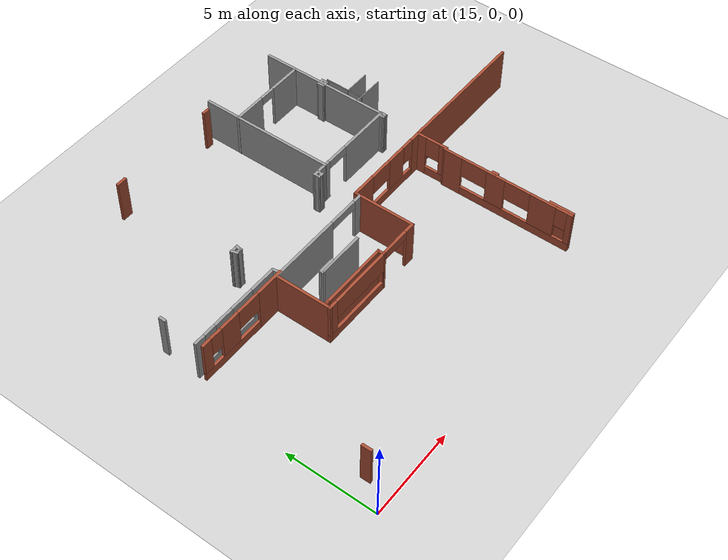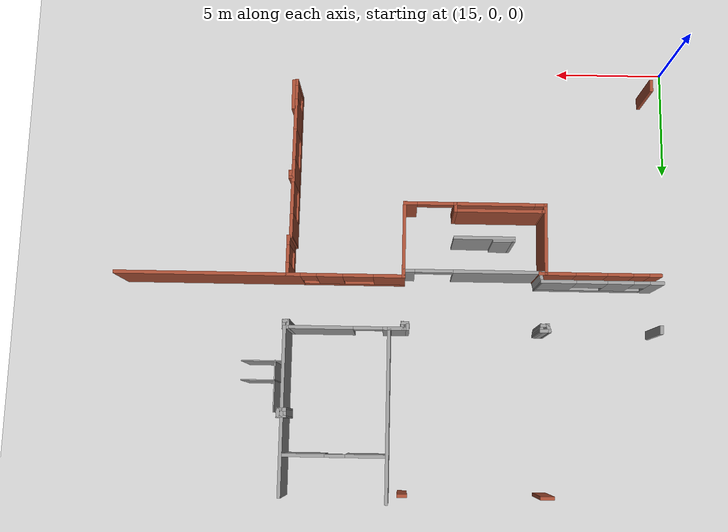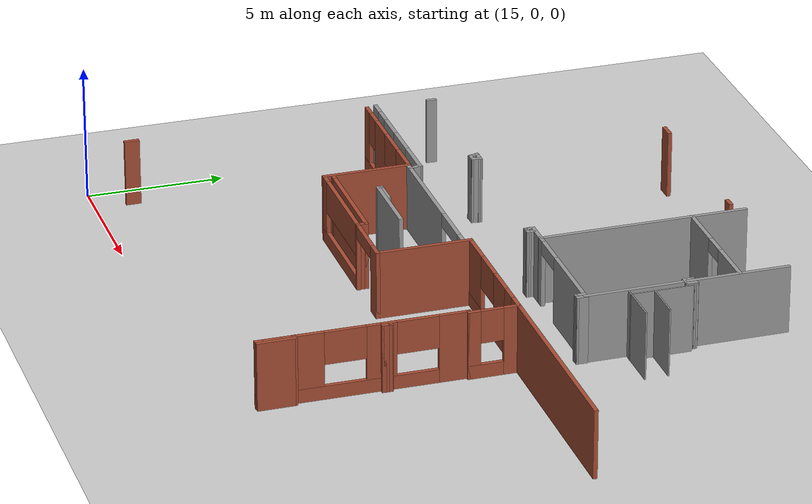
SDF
<sdf version="1.6">
 <world name="default">
  <model name="ground_plane">
   <static>1</static>
   <link name="link">
    <collision name="collision">
     <geometry><plane><normal>0 0 1</normal><size>100 100</size></plane></geometry>
     <surface><friction><ode><mu>100</mu><mu2>50</mu2></ode></friction></surface>
    </collision>
    <visual name="visual">
     <cast_shadows>0</cast_shadows>
     <geometry><plane><normal>0 0 1</normal><size>100 100</size></plane></geometry>
     <material>
      <script><uri>file://media/materials/scripts/gazebo.material</uri><name>Gazebo/Grey</name></script>
     </material>
    </visual>
   </link>
  </model>
  <model name="CVSSP">
   <pose>23.8714 24.094 0 0 -0 0</pose>
   <link name="Wall_116">
    <collision name="Wall_116_Collision">
     <geometry><box><size>7.43734 0.15 2.5</size></box></geometry>
     <pose>0 0 1.25 0 -0 0</pose>
    </collision>
    <visual name="Wall_116_Visual">
     <pose>0 0 1.25 0 -0 0</pose>
     <geometry><box><size>7.43734 0.15 2.5</size></box></geometry>
     <material>
      <script><uri>file://media/materials/scripts/gazebo.material</uri><name>Gazebo/Grey</name></script>
      <ambient>1 1 1 1</ambient>
     </material>
    </visual>
    <pose>8.67152 -7.59872 0 0 -0 1.57447</pose>
   </link>
   <link name="Wall_176">
    <pose>9.90447 -13.5773 0 0 -0 3.14159</pose>
    <visual name="Wall_176_Visual_0">
     <pose>-2.33334 0 1.25 0 -0 0</pose>
     <geometry><box><size>8.33331 0.15 2.5</size></box></geometry>
     <material>
      <script><uri>file://media/materials/scripts/gazebo.material</uri><name>Gazebo/Bricks</name></script>
      <ambient>1 1 1 1</ambient>
     </material>
    </visual>
    <collision name="Wall_176_Collision_0">
     <geometry><box><size>8.33331 0.15 2.5</size></box></geometry>
     <pose>-2.33334 0 1.25 0 -0 0</pose>
    </collision>
    <visual name="Wall_176_Visual_1">
     <pose>4.16666 0 0.25 0 -0 0</pose>
     <geometry><box><size>4.66669 0.15 0.5</size></box></geometry>
     <material>
      <script><uri>file://media/materials/scripts/gazebo.material</uri><name>Gazebo/Bricks</name></script>
      <ambient>1 1 1 1</ambient>
     </material>
    </visual>
    <collision name="Wall_176_Collision_1">
     <geometry><box><size>4.66669 0.15 0.5</size></box></geometry>
     <pose>4.16666 0 0.25 0 -0 0</pose>
    </collision>
    <visual name="Wall_176_Visual_2">
     <pose>3.13486 0 1.5 0 -0 0</pose>
     <geometry><box><size>1.16219 0.15 2</size></box></geometry>
     <material>
      <script><uri>file://media/materials/scripts/gazebo.material</uri><name>Gazebo/Bricks</name></script>
      <ambient>1 1 1 1</ambient>
     </material>
    </visual>
    <collision name="Wall_176_Collision_2">
     <geometry><box><size>1.16219 0.15 2</size></box></geometry>
     <pose>3.13486 0 1.5 0 -0 0</pose>
    </collision>
    <visual name="Wall_176_Visual_3">
     <pose>5.7864 0 1.5 0 -0 0</pose>
     <geometry><box><size>1.42721 0.15 2</size></box></geometry>
     <material>
      <script><uri>file://media/materials/scripts/gazebo.material</uri><name>Gazebo/Bricks</name></script>
      <ambient>1 1 1 1</ambient>
     </material>
    </visual>
    <collision name="Wall_176_Collision_3">
     <geometry><box><size>1.42721 0.15 2</size></box></geometry>
     <pose>5.7864 0 1.5 0 -0 0</pose>
    </collision>
    <visual name="Wall_176_Visual_4">
     <pose>2.19354 0 1.9 0 -0 0</pose>
     <geometry><box><size>0.720452 0.15 1.2</size></box></geometry>
     <material>
      <script><uri>file://media/materials/scripts/gazebo.material</uri><name>Gazebo/Bricks</name></script>
      <ambient>1 1 1 1</ambient>
     </material>
    </visual>
    <collision name="Wall_176_Collision_4">
     <geometry><box><size>0.720452 0.15 1.2</size></box></geometry>
     <pose>2.19354 0 1.9 0 -0 0</pose>
    </collision>
    <visual name="Wall_176_Visual_5">
     <pose>4.39437 0 1.9 0 -0 0</pose>
     <geometry><box><size>1.35684 0.15 1.2</size></box></geometry>
     <material>
      <script><uri>file://media/materials/scripts/gazebo.material</uri><name>Gazebo/Bricks</name></script>
      <ambient>1 1 1 1</ambient>
     </material>
    </visual>
    <collision name="Wall_176_Collision_5">
     <geometry><box><size>1.35684 0.15 1.2</size></box></geometry>
     <pose>4.39437 0 1.9 0 -0 0</pose>
    </collision>
   </link>
   <link name="Wall_179">
    <pose>8.65751 -14.4573 0 0 0 -1.5708</pose>
    <visual name="Wall_179_Visual_0">
     <pose>-0.628809 0 1.25 0 -0 0</pose>
     <geometry><box><size>0.582411 0.15 2.5</size></box></geometry>
     <material>
      <script><uri>file://media/materials/scripts/gazebo.material</uri><name>Gazebo/Bricks</name></script>
      <ambient>1 1 1 1</ambient>
     </material>
    </visual>
    <collision name="Wall_179_Collision_0">
     <geometry><box><size>0.582411 0.15 2.5</size></box></geometry>
     <pose>-0.628809 0 1.25 0 -0 0</pose>
    </collision>
    <visual name="Wall_179_Visual_1">
     <pose>0.291205 0 0.25 0 -0 0</pose>
     <geometry><box><size>1.25762 0.15 0.5</size></box></geometry>
     <material>
      <script><uri>file://media/materials/scripts/gazebo.material</uri><name>Gazebo/Bricks</name></script>
      <ambient>1 1 1 1</ambient>
     </material>
    </visual>
    <collision name="Wall_179_Collision_1">
     <geometry><box><size>1.25762 0.15 0.5</size></box></geometry>
     <pose>0.291205 0 0.25 0 -0 0</pose>
    </collision>
    <visual name="Wall_179_Visual_2">
     <pose>0.691205 0 1.5 0 -0 0</pose>
     <geometry><box><size>0.457619 0.15 2</size></box></geometry>
     <material>
      <script><uri>file://media/materials/scripts/gazebo.material</uri><name>Gazebo/Bricks</name></script>
      <ambient>1 1 1 1</ambient>
     </material>
    </visual>
    <collision name="Wall_179_Collision_2">
     <geometry><box><size>0.457619 0.15 2</size></box></geometry>
     <pose>0.691205 0 1.5 0 -0 0</pose>
    </collision>
    <visual name="Wall_179_Visual_3">
     <pose>0.062396 0 1.9 0 -0 0</pose>
     <geometry><box><size>0.8 0.15 1.2</size></box></geometry>
     <material>
      <script><uri>file://media/materials/scripts/gazebo.material</uri><name>Gazebo/Bricks</name></script>
      <ambient>1 1 1 1</ambient>
     </material>
    </visual>
    <collision name="Wall_179_Collision_3">
     <geometry><box><size>0.8 0.15 1.2</size></box></geometry>
     <pose>0.062396 0 1.9 0 -0 0</pose>
    </collision>
   </link>
   <link name="Wall_181">
    <collision name="Wall_181_Collision">
     <geometry><box><size>0.25 0.15 2.5</size></box></geometry>
     <pose>0 0 1.25 0 -0 0</pose>
    </collision>
    <visual name="Wall_181_Visual">
     <pose>0 0 1.25 0 -0 0</pose>
     <geometry><box><size>0.25 0.15 2.5</size></box></geometry>
     <material>
      <script><uri>file://media/materials/scripts/gazebo.material</uri><name>Gazebo/Bricks</name></script>
      <ambient>1 1 1 1</ambient>
     </material>
    </visual>
    <pose>8.60751 -15.3023 0 0 -0 3.14159</pose>
   </link>
   <link name="Wall_182">
    <pose>8.54751 -18.9623 0 0 0 -1.57353</pose>
    <visual name="Wall_182_Visual_0">
     <pose>-3.1752 0 1.25 0 -0 0</pose>
     <geometry><box><size>1.11963 0.15 2.5</size></box></geometry>
     <material>
      <script><uri>file://media/materials/scripts/gazebo.material</uri><name>Gazebo/Bricks</name></script>
      <ambient>1 1 1 1</ambient>
     </material>
    </visual>
    <collision name="Wall_182_Collision_0">
     <geometry><box><size>1.11963 0.15 2.5</size></box></geometry>
     <pose>-3.1752 0 1.25 0 -0 0</pose>
    </collision>
    <visual name="Wall_182_Visual_1">
     <pose>0.559815 0 0.25 0 -0 0</pose>
     <geometry><box><size>6.3504 0.15 0.5</size></box></geometry>
     <material>
      <script><uri>file://media/materials/scripts/gazebo.material</uri><name>Gazebo/Bricks</name></script>
      <ambient>1 1 1 1</ambient>
     </material>
    </visual>
    <collision name="Wall_182_Collision_1">
     <geometry><box><size>6.3504 0.15 0.5</size></box></geometry>
     <pose>0.559815 0 0.25 0 -0 0</pose>
    </collision>
    <visual name="Wall_182_Visual_2">
     <pose>-0.626161 0 1.5 0 -0 0</pose>
     <geometry><box><size>1.05351 0.15 2</size></box></geometry>
     <material>
      <script><uri>file://media/materials/scripts/gazebo.material</uri><name>Gazebo/Bricks</name></script>
      <ambient>1 1 1 1</ambient>
     </material>
    </visual>
    <collision name="Wall_182_Collision_2">
     <geometry><box><size>1.05351 0.15 2</size></box></geometry>
     <pose>-0.626161 0 1.5 0 -0 0</pose>
    </collision>
    <visual name="Wall_182_Visual_3">
     <pose>2.08039 0 1.5 0 -0 0</pose>
     <geometry><box><size>1.44149 0.15 2</size></box></geometry>
     <material>
      <script><uri>file://media/materials/scripts/gazebo.material</uri><name>Gazebo/Bricks</name></script>
      <ambient>1 1 1 1</ambient>
     </material>
    </visual>
    <collision name="Wall_182_Collision_3">
     <geometry><box><size>1.44149 0.15 2</size></box></geometry>
     <pose>2.08039 0 1.5 0 -0 0</pose>
    </collision>
    <visual name="Wall_182_Visual_4">
     <pose>3.58898 0 1.5 0 -0 0</pose>
     <geometry><box><size>0.292074 0.15 2</size></box></geometry>
     <material>
      <script><uri>file://media/materials/scripts/gazebo.material</uri><name>Gazebo/Bricks</name></script>
      <ambient>1 1 1 1</ambient>
     </material>
    </visual>
    <collision name="Wall_182_Collision_4">
     <geometry><box><size>0.292074 0.15 2</size></box></geometry>
     <pose>3.58898 0 1.5 0 -0 0</pose>
    </collision>
    <visual name="Wall_182_Visual_5">
     <pose>-1.88415 0 1.9 0 -0 0</pose>
     <geometry><box><size>1.46246 0.15 1.2</size></box></geometry>
     <material>
      <script><uri>file://media/materials/scripts/gazebo.material</uri><name>Gazebo/Bricks</name></script>
      <ambient>1 1 1 1</ambient>
     </material>
    </visual>
    <collision name="Wall_182_Collision_5">
     <geometry><box><size>1.46246 0.15 1.2</size></box></geometry>
     <pose>-1.88415 0 1.9 0 -0 0</pose>
    </collision>
    <visual name="Wall_182_Visual_6">
     <pose>0.63012 0 1.9 0 -0 0</pose>
     <geometry><box><size>1.45905 0.15 1.2</size></box></geometry>
     <material>
      <script><uri>file://media/materials/scripts/gazebo.material</uri><name>Gazebo/Bricks</name></script>
      <ambient>1 1 1 1</ambient>
     </material>
    </visual>
    <collision name="Wall_182_Collision_6">
     <geometry><box><size>1.45905 0.15 1.2</size></box></geometry>
     <pose>0.63012 0 1.9 0 -0 0</pose>
    </collision>
    <visual name="Wall_182_Visual_7">
     <pose>3.12204 0 1.9 0 -0 0</pose>
     <geometry><box><size>0.641802 0.15 1.2</size></box></geometry>
     <material>
      <script><uri>file://media/materials/scripts/gazebo.material</uri><name>Gazebo/Bricks</name></script>
      <ambient>1 1 1 1</ambient>
     </material>
    </visual>
    <collision name="Wall_182_Collision_7">
     <geometry><box><size>0.641802 0.15 1.2</size></box></geometry>
     <pose>3.12204 0 1.9 0 -0 0</pose>
    </collision>
   </link>
   <link name="Wall_191">
    <collision name="Wall_191_Collision">
     <geometry><box><size>0.25 0.15 2.5</size></box></geometry>
     <pose>0 0 1.25 0 -0 0</pose>
    </collision>
    <visual name="Wall_191_Visual">
     <pose>0 0 1.25 0 -0 0</pose>
     <geometry><box><size>0.25 0.15 2.5</size></box></geometry>
     <material>
      <script><uri>file://media/materials/scripts/gazebo.material</uri><name>Gazebo/Bricks</name></script>
      <ambient>1 1 1 1</ambient>
     </material>
    </visual>
    <pose>8.62063 -21.3528 0 0 -0 0</pose>
   </link>
   <link name="Wall_192">
    <collision name="Wall_192_Collision">
     <geometry><box><size>1.40351 0.15 2.5</size></box></geometry>
     <pose>0 0 1.25 0 -0 0</pose>
    </collision>
    <visual name="Wall_192_Visual">
     <pose>0 0 1.25 0 -0 0</pose>
     <geometry><box><size>1.40351 0.15 2.5</size></box></geometry>
     <material>
      <script><uri>file://media/materials/scripts/gazebo.material</uri><name>Gazebo/Bricks</name></script>
      <ambient>1 1 1 1</ambient>
     </material>
    </visual>
    <pose>8.67238 -21.9795 0 0 0 -1.568</pose>
   </link>
   <link name="Wall_505">
    <collision name="Wall_505_Collision">
     <geometry><box><size>3.5 0.15 2.5</size></box></geometry>
     <pose>0 0 1.25 0 -0 0</pose>
    </collision>
    <visual name="Wall_505_Visual">
     <pose>0 0 1.25 0 -0 0</pose>
     <geometry><box><size>3.5 0.15 2.5</size></box></geometry>
     <material>
      <script><uri>file://media/materials/scripts/gazebo.material</uri><name>Gazebo/Bricks</name></script>
      <ambient>1 1 1 1</ambient>
     </material>
    </visual>
    <pose>3.47947 -15.2523 0 0 0 -1.5708</pose>
   </link>
   <link name="Wall_506">
    <pose>0.304469 -16.9273 0 0 -0 3.14159</pose>
    <visual name="Wall_506_Visual_0">
     <pose>-2.93094 0 1.25 0 -0 0</pose>
     <geometry><box><size>0.638116 0.15 2.5</size></box></geometry>
     <material>
      <script><uri>file://media/materials/scripts/gazebo.material</uri><name>Gazebo/Bricks</name></script>
      <ambient>1 1 1 1</ambient>
     </material>
    </visual>
    <collision name="Wall_506_Collision_0">
     <geometry><box><size>0.638116 0.15 2.5</size></box></geometry>
     <pose>-2.93094 0 1.25 0 -0 0</pose>
    </collision>
    <visual name="Wall_506_Visual_1">
     <pose>-0.912696 0 1.25 0 -0 0</pose>
     <geometry><box><size>0.137507 0.15 2.5</size></box></geometry>
     <material>
      <script><uri>file://media/materials/scripts/gazebo.material</uri><name>Gazebo/Bricks</name></script>
      <ambient>1 1 1 1</ambient>
     </material>
    </visual>
    <collision name="Wall_506_Collision_1">
     <geometry><box><size>0.137507 0.15 2.5</size></box></geometry>
     <pose>-0.912696 0 1.25 0 -0 0</pose>
    </collision>
    <visual name="Wall_506_Visual_2">
     <pose>1.20303 0 0.25 0 -0 0</pose>
     <geometry><box><size>4.09394 0.15 0.5</size></box></geometry>
     <material>
      <script><uri>file://media/materials/scripts/gazebo.material</uri><name>Gazebo/Bricks</name></script>
      <ambient>1 1 1 1</ambient>
     </material>
    </visual>
    <collision name="Wall_506_Collision_2">
     <geometry><box><size>4.09394 0.15 0.5</size></box></geometry>
     <pose>1.20303 0 0.25 0 -0 0</pose>
    </collision>
    <visual name="Wall_506_Visual_3">
     <pose>2.97461 0 1.5 0 -0 0</pose>
     <geometry><box><size>0.550785 0.15 2</size></box></geometry>
     <material>
      <script><uri>file://media/materials/scripts/gazebo.material</uri><name>Gazebo/Bricks</name></script>
      <ambient>1 1 1 1</ambient>
     </material>
    </visual>
    <collision name="Wall_506_Collision_3">
     <geometry><box><size>0.550785 0.15 2</size></box></geometry>
     <pose>2.97461 0 1.5 0 -0 0</pose>
    </collision>
    <visual name="Wall_506_Visual_4">
     <pose>0.927636 0 1.9 0 -0 0</pose>
     <geometry><box><size>3.54316 0.15 1.2</size></box></geometry>
     <material>
      <script><uri>file://media/materials/scripts/gazebo.material</uri><name>Gazebo/Bricks</name></script>
      <ambient>1 1 1 1</ambient>
     </material>
    </visual>
    <collision name="Wall_506_Collision_4">
     <geometry><box><size>3.54316 0.15 1.2</size></box></geometry>
     <pose>0.927636 0 1.9 0 -0 0</pose>
    </collision>
    <visual name="Wall_506_Visual_5">
     <pose>-1.79667 0 2.25 0 -0 0</pose>
     <geometry><box><size>1.63044 0.15 0.5</size></box></geometry>
     <material>
      <script><uri>file://media/materials/scripts/gazebo.material</uri><name>Gazebo/Bricks</name></script>
      <ambient>1 1 1 1</ambient>
     </material>
    </visual>
    <collision name="Wall_506_Collision_5">
     <geometry><box><size>1.63044 0.15 0.5</size></box></geometry>
     <pose>-1.79667 0 2.25 0 -0 0</pose>
    </collision>
   </link>
   <link name="Wall_507">
    <collision name="Wall_507_Collision">
     <geometry><box><size>3.25 0.15 2.5</size></box></geometry>
     <pose>0 0 1.25 0 -0 0</pose>
    </collision>
    <visual name="Wall_507_Visual">
     <pose>0 0 1.25 0 -0 0</pose>
     <geometry><box><size>3.25 0.15 2.5</size></box></geometry>
     <material>
      <script><uri>file://media/materials/scripts/gazebo.material</uri><name>Gazebo/Bricks</name></script>
      <ambient>1 1 1 1</ambient>
     </material>
    </visual>
    <pose>-2.87053 -15.3773 0 0 -0 1.5708</pose>
   </link>
   <link name="Wall_508">
    <pose>0.304469 -13.8405 0 0 -0 0</pose>
    <visual name="Wall_508_Visual_0">
     <pose>-1.14297 0 1.25 0 -0 0</pose>
     <geometry><box><size>4.21406 0.15 2.5</size></box></geometry>
     <material>
      <script><uri>file://media/materials/scripts/gazebo.material</uri><name>Gazebo/Grey</name></script>
      <ambient>0.588235 0.588235 0.588235 1</ambient>
     </material>
    </visual>
    <collision name="Wall_508_Collision_0">
     <geometry><box><size>4.21406 0.15 2.5</size></box></geometry>
     <pose>-1.14297 0 1.25 0 -0 0</pose>
    </collision>
    <visual name="Wall_508_Visual_1">
     <pose>2.96572 0 1.25 0 -0 0</pose>
     <geometry><box><size>0.56855 0.15 2.5</size></box></geometry>
     <material>
      <script><uri>file://media/materials/scripts/gazebo.material</uri><name>Gazebo/Grey</name></script>
      <ambient>0.588235 0.588235 0.588235 1</ambient>
     </material>
    </visual>
    <collision name="Wall_508_Collision_1">
     <geometry><box><size>0.56855 0.15 2.5</size></box></geometry>
     <pose>2.96572 0 1.25 0 -0 0</pose>
    </collision>
    <visual name="Wall_508_Visual_2">
     <pose>1.82275 0 2.25 0 -0 0</pose>
     <geometry><box><size>1.71739 0.15 0.5</size></box></geometry>
     <material>
      <script><uri>file://media/materials/scripts/gazebo.material</uri><name>Gazebo/Grey</name></script>
      <ambient>0.588235 0.588235 0.588235 1</ambient>
     </material>
    </visual>
    <collision name="Wall_508_Collision_2">
     <geometry><box><size>1.71739 0.15 0.5</size></box></geometry>
     <pose>1.82275 0 2.25 0 -0 0</pose>
    </collision>
   </link>
   <link name="Wall_510">
    <pose>6.36165 -11.2424 0 0 -0 3.14159</pose>
    <visual name="Wall_510_Visual_0">
     <pose>-0.840975 0 1.25 0 -0 0</pose>
     <geometry><box><size>3.06805 0.15 2.5</size></box></geometry>
     <material>
      <script><uri>file://media/materials/scripts/gazebo.material</uri><name>Gazebo/Grey</name></script>
      <ambient>0.588235 0.588235 0.588235 1</ambient>
     </material>
    </visual>
    <collision name="Wall_510_Collision_0">
     <geometry><box><size>3.06805 0.15 2.5</size></box></geometry>
     <pose>-0.840975 0 1.25 0 -0 0</pose>
    </collision>
    <visual name="Wall_510_Visual_1">
     <pose>2.18353 0 1.25 0 -0 0</pose>
     <geometry><box><size>0.382947 0.15 2.5</size></box></geometry>
     <material>
      <script><uri>file://media/materials/scripts/gazebo.material</uri><name>Gazebo/Grey</name></script>
      <ambient>0.588235 0.588235 0.588235 1</ambient>
     </material>
    </visual>
    <collision name="Wall_510_Collision_1">
     <geometry><box><size>0.382947 0.15 2.5</size></box></geometry>
     <pose>2.18353 0 1.25 0 -0 0</pose>
    </collision>
    <visual name="Wall_510_Visual_2">
     <pose>1.34255 0 2.25 0 -0 0</pose>
     <geometry><box><size>1.299 0.15 0.5</size></box></geometry>
     <material>
      <script><uri>file://media/materials/scripts/gazebo.material</uri><name>Gazebo/Grey</name></script>
      <ambient>0.588235 0.588235 0.588235 1</ambient>
     </material>
    </visual>
    <collision name="Wall_510_Collision_2">
     <geometry><box><size>1.299 0.15 0.5</size></box></geometry>
     <pose>1.34255 0 2.25 0 -0 0</pose>
    </collision>
   </link>
   <link name="Wall_511">
    <collision name="Wall_511_Collision">
     <geometry><box><size>7.64004 0.15 2.5</size></box></geometry>
     <pose>0 0 1.25 0 -0 0</pose>
    </collision>
    <visual name="Wall_511_Visual">
     <pose>0 0 1.25 0 -0 0</pose>
     <geometry><box><size>7.64004 0.15 2.5</size></box></geometry>
     <material>
      <script><uri>file://media/materials/scripts/gazebo.material</uri><name>Gazebo/Grey</name></script>
      <ambient>0.588235 0.588235 0.588235 1</ambient>
     </material>
    </visual>
    <pose>4.07328 -7.49736 0 0 -0 1.5739</pose>
   </link>
   <link name="Wall_513">
    <pose>6.35679 -5.70156 0 0 -0 0</pose>
    <visual name="Wall_513_Visual_0">
     <pose>-1.42856 0 1.25 0 -0 0</pose>
     <geometry><box><size>1.89288 0.15 2.5</size></box></geometry>
     <material>
      <script><uri>file://media/materials/scripts/gazebo.material</uri><name>Gazebo/Grey</name></script>
      <ambient>0.588235 0.588235 0.588235 1</ambient>
     </material>
    </visual>
    <collision name="Wall_513_Collision_0">
     <geometry><box><size>1.89288 0.15 2.5</size></box></geometry>
     <pose>-1.42856 0 1.25 0 -0 0</pose>
    </collision>
    <visual name="Wall_513_Visual_1">
     <pose>1.39644 0 1.25 0 -0 0</pose>
     <geometry><box><size>1.95712 0.15 2.5</size></box></geometry>
     <material>
      <script><uri>file://media/materials/scripts/gazebo.material</uri><name>Gazebo/Grey</name></script>
      <ambient>0.588235 0.588235 0.588235 1</ambient>
     </material>
    </visual>
    <collision name="Wall_513_Collision_1">
     <geometry><box><size>1.95712 0.15 2.5</size></box></geometry>
     <pose>1.39644 0 1.25 0 -0 0</pose>
    </collision>
    <visual name="Wall_513_Visual_2">
     <pose>-0.032121 0 2.25 0 -0 0</pose>
     <geometry><box><size>0.9 0.15 0.5</size></box></geometry>
     <material>
      <script><uri>file://media/materials/scripts/gazebo.material</uri><name>Gazebo/Grey</name></script>
      <ambient>0.588235 0.588235 0.588235 1</ambient>
     </material>
    </visual>
    <collision name="Wall_513_Collision_2">
     <geometry><box><size>0.9 0.15 0.5</size></box></geometry>
     <pose>-0.032121 0 2.25 0 -0 0</pose>
    </collision>
   </link>
   <link name="Wall_515">
    <collision name="Wall_515_Collision">
     <geometry><box><size>0.96868 0.15 2.5</size></box></geometry>
     <pose>0 0 1.25 0 -0 0</pose>
    </collision>
    <visual name="Wall_515_Visual">
     <pose>0 0 1.25 0 -0 0</pose>
     <geometry><box><size>0.96868 0.15 2.5</size></box></geometry>
     <material>
      <script><uri>file://media/materials/scripts/gazebo.material</uri><name>Gazebo/Grey</name></script>
      <ambient>0.588235 0.588235 0.588235 1</ambient>
     </material>
    </visual>
    <pose>3.67558 -11.2435 0 0 0 -3.13878</pose>
   </link>
   <link name="Wall_516">
    <collision name="Wall_516_Collision">
     <geometry><box><size>0.299942 0.15 2.5</size></box></geometry>
     <pose>0 0 1.25 0 -0 0</pose>
    </collision>
    <visual name="Wall_516_Visual">
     <pose>0 0 1.25 0 -0 0</pose>
     <geometry><box><size>0.299942 0.15 2.5</size></box></geometry>
     <material>
      <script><uri>file://media/materials/scripts/gazebo.material</uri><name>Gazebo/Grey</name></script>
      <ambient>1 1 1 1</ambient>
     </material>
    </visual>
    <pose>3.26624 -11.3194 0 0 0 -1.5708</pose>
   </link>
   <link name="Wall_538">
    <pose>-5.361 -13.4582 0 0 -0 0</pose>
    <visual name="Wall_538_Visual_0">
     <pose>-2.43267 0 1.25 0 -0 0</pose>
     <geometry><box><size>0.634665 0.15 2.5</size></box></geometry>
     <material>
      <script><uri>file://media/materials/scripts/gazebo.material</uri><name>Gazebo/Grey</name></script>
      <ambient>0.588235 0.588235 0.588235 1</ambient>
     </material>
    </visual>
    <collision name="Wall_538_Collision_0">
     <geometry><box><size>0.634665 0.15 2.5</size></box></geometry>
     <pose>-2.43267 0 1.25 0 -0 0</pose>
    </collision>
    <visual name="Wall_538_Visual_1">
     <pose>0.317332 0 0.25 0 -0 0</pose>
     <geometry><box><size>4.86533 0.15 0.5</size></box></geometry>
     <material>
      <script><uri>file://media/materials/scripts/gazebo.material</uri><name>Gazebo/Grey</name></script>
      <ambient>0.588235 0.588235 0.588235 1</ambient>
     </material>
    </visual>
    <collision name="Wall_538_Collision_1">
     <geometry><box><size>4.86533 0.15 0.5</size></box></geometry>
     <pose>0.317332 0 0.25 0 -0 0</pose>
    </collision>
    <visual name="Wall_538_Visual_2">
     <pose>-0.810818 0 1.5 0 -0 0</pose>
     <geometry><box><size>1.15893 0.15 2</size></box></geometry>
     <material>
      <script><uri>file://media/materials/scripts/gazebo.material</uri><name>Gazebo/Grey</name></script>
      <ambient>0.588235 0.588235 0.588235 1</ambient>
     </material>
    </visual>
    <collision name="Wall_538_Collision_2">
     <geometry><box><size>1.15893 0.15 2</size></box></geometry>
     <pose>-0.810818 0 1.5 0 -0 0</pose>
    </collision>
    <visual name="Wall_538_Visual_3">
     <pose>1.95518 0 1.5 0 -0 0</pose>
     <geometry><box><size>1.58965 0.15 2</size></box></geometry>
     <material>
      <script><uri>file://media/materials/scripts/gazebo.material</uri><name>Gazebo/Grey</name></script>
      <ambient>0.588235 0.588235 0.588235 1</ambient>
     </material>
    </visual>
    <collision name="Wall_538_Collision_3">
     <geometry><box><size>1.58965 0.15 2</size></box></geometry>
     <pose>1.95518 0 1.5 0 -0 0</pose>
    </collision>
    <visual name="Wall_538_Visual_4">
     <pose>-1.75281 0 1.9 0 -0 0</pose>
     <geometry><box><size>0.72505 0.15 1.2</size></box></geometry>
     <material>
      <script><uri>file://media/materials/scripts/gazebo.material</uri><name>Gazebo/Grey</name></script>
      <ambient>0.588235 0.588235 0.588235 1</ambient>
     </material>
    </visual>
    <collision name="Wall_538_Collision_4">
     <geometry><box><size>0.72505 0.15 1.2</size></box></geometry>
     <pose>-1.75281 0 1.9 0 -0 0</pose>
    </collision>
    <visual name="Wall_538_Visual_5">
     <pose>0.4645 0 1.9 0 -0 0</pose>
     <geometry><box><size>1.3917 0.15 1.2</size></box></geometry>
     <material>
      <script><uri>file://media/materials/scripts/gazebo.material</uri><name>Gazebo/Grey</name></script>
      <ambient>0.588235 0.588235 0.588235 1</ambient>
     </material>
    </visual>
    <collision name="Wall_538_Collision_5">
     <geometry><box><size>1.3917 0.15 1.2</size></box></geometry>
     <pose>0.4645 0 1.9 0 -0 0</pose>
    </collision>
   </link>
   <link name="Wall_539">
    <collision name="Wall_539_Collision">
     <geometry><box><size>0.505851 0.15 2.5</size></box></geometry>
     <pose>0 0 1.25 0 -0 0</pose>
    </collision>
    <visual name="Wall_539_Visual">
     <pose>0 0 1.25 0 -0 0</pose>
     <geometry><box><size>0.505851 0.15 2.5</size></box></geometry>
     <material>
      <script><uri>file://media/materials/scripts/gazebo.material</uri><name>Gazebo/Grey</name></script>
      <ambient>1 1 1 1</ambient>
     </material>
    </visual>
    <pose>-2.64978 -13.6324 0 0 0 -1.3658</pose>
   </link>
   <link name="Wall_596">
    <collision name="Wall_596_Collision">
     <geometry><box><size>4 0.15 2.5</size></box></geometry>
     <pose>0 0 1.25 0 -0 0</pose>
    </collision>
    <visual name="Wall_596_Visual">
     <pose>0 0 1.25 0 -0 0</pose>
     <geometry><box><size>4 0.15 2.5</size></box></geometry>
     <material>
      <script><uri>file://media/materials/scripts/gazebo.material</uri><name>Gazebo/Bricks</name></script>
      <ambient>1 1 1 1</ambient>
     </material>
    </visual>
    <pose>-0.740764 -16.6286 0 0 -0 0</pose>
   </link>
   <link name="Wall_598">
    <collision name="Wall_598_Collision">
     <geometry><box><size>0.429619 0.15 2.5</size></box></geometry>
     <pose>0 0 1.25 0 -0 0</pose>
    </collision>
    <visual name="Wall_598_Visual">
     <pose>0 0 1.25 0 -0 0</pose>
     <geometry><box><size>0.429619 0.15 2.5</size></box></geometry>
     <material>
      <script><uri>file://media/materials/scripts/gazebo.material</uri><name>Gazebo/Bricks</name></script>
      <ambient>1 1 1 1</ambient>
     </material>
    </visual>
    <pose>1.18424 -16.7682 0 0 0 -1.5708</pose>
   </link>
   <link name="Wall_600">
    <collision name="Wall_600_Collision">
     <geometry><box><size>2.75 0.15 2.5</size></box></geometry>
     <pose>0 0 1.25 0 -0 0</pose>
    </collision>
    <visual name="Wall_600_Visual">
     <pose>0 0 1.25 0 -0 0</pose>
     <geometry><box><size>2.75 0.15 2.5</size></box></geometry>
     <material>
      <script><uri>file://media/materials/scripts/gazebo.material</uri><name>Gazebo/Grey</name></script>
      <ambient>0.588235 0.588235 0.588235 1</ambient>
     </material>
    </visual>
    <pose>-0.115764 -15.3784 0 0 -0 3.14159</pose>
   </link>
   <link name="Wall_601">
    <collision name="Wall_601_Collision">
     <geometry><box><size>0.25 0.15 2.5</size></box></geometry>
     <pose>0 0 1.25 0 -0 0</pose>
    </collision>
    <visual name="Wall_601_Visual">
     <pose>0 0 1.25 0 -0 0</pose>
     <geometry><box><size>0.25 0.15 2.5</size></box></geometry>
     <material>
      <script><uri>file://media/materials/scripts/gazebo.material</uri><name>Gazebo/Grey</name></script>
      <ambient>1 1 1 1</ambient>
     </material>
    </visual>
    <pose>-1.41576 -15.3284 0 0 -0 1.5708</pose>
   </link>
   <link name="Wall_602">
    <collision name="Wall_602_Collision">
     <geometry><box><size>1 0.15 2.5</size></box></geometry>
     <pose>0 0 1.25 0 -0 0</pose>
    </collision>
    <visual name="Wall_602_Visual">
     <pose>0 0 1.25 0 -0 0</pose>
     <geometry><box><size>1 0.15 2.5</size></box></geometry>
     <material>
      <script><uri>file://media/materials/scripts/gazebo.material</uri><name>Gazebo/Grey</name></script>
      <ambient>0.588235 0.588235 0.588235 1</ambient>
     </material>
    </visual>
    <pose>-0.990764 -15.2784 0 0 -0 0</pose>
   </link>
   <link name="Wall_768">
    <collision name="Wall_768_Collision">
     <geometry><box><size>0.25 0.15 2.5</size></box></geometry>
     <pose>0 0 1.25 0 -0 0</pose>
    </collision>
    <visual name="Wall_768_Visual">
     <pose>0 0 1.25 0 -0 0</pose>
     <geometry><box><size>0.25 0.15 2.5</size></box></geometry>
     <material>
      <script><uri>file://media/materials/scripts/gazebo.material</uri><name>Gazebo/Bricks</name></script>
      <ambient>1 1 1 1</ambient>
     </material>
    </visual>
    <pose>8.63163 -18.0542 0 0 -0 0</pose>
   </link>
   <link name="Wall_769">
    <collision name="Wall_769_Collision">
     <geometry><box><size>0.397826 0.15 2.5</size></box></geometry>
     <pose>0 0 1.25 0 -0 0</pose>
    </collision>
    <visual name="Wall_769_Visual">
     <pose>0 0 1.25 0 -0 0</pose>
     <geometry><box><size>0.397826 0.15 2.5</size></box></geometry>
     <material>
      <script><uri>file://media/materials/scripts/gazebo.material</uri><name>Gazebo/Bricks</name></script>
      <ambient>1 1 1 1</ambient>
     </material>
    </visual>
    <pose>8.68163 -18.1781 0 0 0 -1.5708</pose>
   </link>
   <link name="Wall_770">
    <collision name="Wall_770_Collision">
     <geometry><box><size>0.25 0.15 2.5</size></box></geometry>
     <pose>0 0 1.25 0 -0 0</pose>
    </collision>
    <visual name="Wall_770_Visual">
     <pose>0 0 1.25 0 -0 0</pose>
     <geometry><box><size>0.25 0.15 2.5</size></box></geometry>
     <material>
      <script><uri>file://media/materials/scripts/gazebo.material</uri><name>Gazebo/Bricks</name></script>
      <ambient>1 1 1 1</ambient>
     </material>
    </visual>
    <pose>8.63163 -18.302 0 0 -0 3.14159</pose>
   </link>
   <link name="Wall_807">
    <collision name="Wall_807_Collision">
     <geometry><box><size>0.60862 0.15 2.5</size></box></geometry>
     <pose>0 0 1.25 0 -0 0</pose>
    </collision>
    <visual name="Wall_807_Visual">
     <pose>0 0 1.25 0 -0 0</pose>
     <geometry><box><size>0.60862 0.15 2.5</size></box></geometry>
     <material>
      <script><uri>file://media/materials/scripts/gazebo.material</uri><name>Gazebo/Bricks</name></script>
      <ambient>1 1 1 1</ambient>
     </material>
    </visual>
    <pose>-2.82277 -4.08199 0 0 -0 0</pose>
   </link>
   <link name="Wall_811">
    <collision name="Wall_811_Collision">
     <geometry><box><size>0.429611 0.15 2.5</size></box></geometry>
     <pose>0 0 1.25 0 -0 0</pose>
    </collision>
    <visual name="Wall_811_Visual">
     <pose>0 0 1.25 0 -0 0</pose>
     <geometry><box><size>0.429611 0.15 2.5</size></box></geometry>
     <material>
      <script><uri>file://media/materials/scripts/gazebo.material</uri><name>Gazebo/Bricks</name></script>
      <ambient>1 1 1 1</ambient>
     </material>
    </visual>
    <pose>3.39627 -4.08199 0 0 -0 0</pose>
   </link>
   <link name="Wall_819">
    <collision name="Wall_819_Collision">
     <geometry><box><size>0.25 0.15 2.5</size></box></geometry>
     <pose>0 0 1.25 0 -0 0</pose>
    </collision>
    <visual name="Wall_819_Visual">
     <pose>0 0 1.25 0 -0 0</pose>
     <geometry><box><size>0.25 0.15 2.5</size></box></geometry>
     <material>
      <script><uri>file://media/materials/scripts/gazebo.material</uri><name>Gazebo/Bricks</name></script>
      <ambient>1 1 1 1</ambient>
     </material>
    </visual>
    <pose>-2.71576 -16.6286 0 0 -0 3.14159</pose>
   </link>
   <link name="Wall_821">
    <pose>-5.27357 -13.8066 0 0 -0 3.14159</pose>
    <visual name="Wall_821_Visual_0">
     <pose>-1.9171 0 1.25 0 -0 0</pose>
     <geometry><box><size>1.66581 0.15 2.5</size></box></geometry>
     <material>
      <script><uri>file://media/materials/scripts/gazebo.material</uri><name>Gazebo/Bricks</name></script>
      <ambient>1 1 1 1</ambient>
     </material>
    </visual>
    <collision name="Wall_821_Collision_0">
     <geometry><box><size>1.66581 0.15 2.5</size></box></geometry>
     <pose>-1.9171 0 1.25 0 -0 0</pose>
    </collision>
    <visual name="Wall_821_Visual_1">
     <pose>0.832904 0 0.25 0 -0 0</pose>
     <geometry><box><size>3.83419 0.15 0.5</size></box></geometry>
     <material>
      <script><uri>file://media/materials/scripts/gazebo.material</uri><name>Gazebo/Bricks</name></script>
      <ambient>1 1 1 1</ambient>
     </material>
    </visual>
    <collision name="Wall_821_Collision_1">
     <geometry><box><size>3.83419 0.15 0.5</size></box></geometry>
     <pose>0.832904 0 0.25 0 -0 0</pose>
    </collision>
    <visual name="Wall_821_Visual_2">
     <pose>0.892612 0 1.5 0 -0 0</pose>
     <geometry><box><size>1.1702 0.15 2</size></box></geometry>
     <material>
      <script><uri>file://media/materials/scripts/gazebo.material</uri><name>Gazebo/Bricks</name></script>
      <ambient>1 1 1 1</ambient>
     </material>
    </visual>
    <collision name="Wall_821_Collision_2">
     <geometry><box><size>1.1702 0.15 2</size></box></geometry>
     <pose>0.892612 0 1.5 0 -0 0</pose>
    </collision>
    <visual name="Wall_821_Visual_3">
     <pose>2.46889 0 1.5 0 -0 0</pose>
     <geometry><box><size>0.562226 0.15 2</size></box></geometry>
     <material>
      <script><uri>file://media/materials/scripts/gazebo.material</uri><name>Gazebo/Bricks</name></script>
      <ambient>1 1 1 1</ambient>
     </material>
    </visual>
    <collision name="Wall_821_Collision_3">
     <geometry><box><size>0.562226 0.15 2</size></box></geometry>
     <pose>2.46889 0 1.5 0 -0 0</pose>
    </collision>
    <visual name="Wall_821_Visual_4">
     <pose>-0.388341 0 1.9 0 -0 0</pose>
     <geometry><box><size>1.3917 0.15 1.2</size></box></geometry>
     <material>
      <script><uri>file://media/materials/scripts/gazebo.material</uri><name>Gazebo/Bricks</name></script>
      <ambient>1 1 1 1</ambient>
     </material>
    </visual>
    <collision name="Wall_821_Collision_4">
     <geometry><box><size>1.3917 0.15 1.2</size></box></geometry>
     <pose>-0.388341 0 1.9 0 -0 0</pose>
    </collision>
    <visual name="Wall_821_Visual_5">
     <pose>1.83274 0 1.9 0 -0 0</pose>
     <geometry><box><size>0.71006 0.15 1.2</size></box></geometry>
     <material>
      <script><uri>file://media/materials/scripts/gazebo.material</uri><name>Gazebo/Bricks</name></script>
      <ambient>1 1 1 1</ambient>
     </material>
    </visual>
    <collision name="Wall_821_Collision_5">
     <geometry><box><size>0.71006 0.15 1.2</size></box></geometry>
     <pose>1.83274 0 1.9 0 -0 0</pose>
    </collision>
   </link>
   <link name="Wall_828">
    <collision name="Wall_828_Collision">
     <geometry><box><size>0.553944 0.15 2.5</size></box></geometry>
     <pose>0 0 1.25 0 -0 0</pose>
    </collision>
    <visual name="Wall_828_Visual">
     <pose>0 0 1.25 0 -0 0</pose>
     <geometry><box><size>0.553944 0.15 2.5</size></box></geometry>
     <material>
      <script><uri>file://media/materials/scripts/gazebo.material</uri><name>Gazebo/Bricks</name></script>
      <ambient>1 1 1 1</ambient>
     </material>
    </visual>
    <pose>-7.78894 -22.6776 0 0 0 -1.55999</pose>
   </link>
   <link name="Wall_845">
    <collision name="Wall_845_Collision">
     <geometry><box><size>0.383617 0.15 2.5</size></box></geometry>
     <pose>0 0 1.25 0 -0 0</pose>
    </collision>
    <visual name="Wall_845_Visual">
     <pose>0 0 1.25 0 -0 0</pose>
     <geometry><box><size>0.383617 0.15 2.5</size></box></geometry>
     <material>
      <script><uri>file://media/materials/scripts/gazebo.material</uri><name>Gazebo/Grey</name></script>
      <ambient>1 1 1 1</ambient>
     </material>
    </visual>
    <pose>-7.91666 -11.3791 0 0 0 -1.60782</pose>
   </link>
   <link name="Wall_849">
    <collision name="Wall_849_Collision">
     <geometry><box><size>0.513155 0.15 2.5</size></box></geometry>
     <pose>0 0 1.25 0 -0 0</pose>
    </collision>
    <visual name="Wall_849_Visual">
     <pose>0 0 1.25 0 -0 0</pose>
     <geometry><box><size>0.513155 0.15 2.5</size></box></geometry>
     <material>
      <script><uri>file://media/materials/scripts/gazebo.material</uri><name>Gazebo/Grey</name></script>
      <ambient>1 1 1 1</ambient>
     </material>
    </visual>
    <pose>-2.80222 -11.2451 0 0 -0 0</pose>
   </link>
   <link name="Wall_850">
    <collision name="Wall_850_Collision">
     <geometry><box><size>0.394561 0.15 2.5</size></box></geometry>
     <pose>0 0 1.25 0 -0 0</pose>
    </collision>
    <visual name="Wall_850_Visual">
     <pose>0 0 1.25 0 -0 0</pose>
     <geometry><box><size>0.394561 0.15 2.5</size></box></geometry>
     <material>
      <script><uri>file://media/materials/scripts/gazebo.material</uri><name>Gazebo/Grey</name></script>
      <ambient>1 1 1 1</ambient>
     </material>
    </visual>
    <pose>-2.63794 -11.3661 0 0 0 -1.71269</pose>
   </link>
   <link name="Wall_851">
    <collision name="Wall_851_Collision">
     <geometry><box><size>0.400899 0.15 2.5</size></box></geometry>
     <pose>0 0 1.25 0 -0 0</pose>
    </collision>
    <visual name="Wall_851_Visual">
     <pose>0 0 1.25 0 -0 0</pose>
     <geometry><box><size>0.400899 0.15 2.5</size></box></geometry>
     <material>
      <script><uri>file://media/materials/scripts/gazebo.material</uri><name>Gazebo/Grey</name></script>
      <ambient>1 1 1 1</ambient>
     </material>
    </visual>
    <pose>-2.78061 -11.4915 0 0 0 -3.10712</pose>
   </link>
   <link name="Wall_852">
    <collision name="Wall_852_Collision">
     <geometry><box><size>0.412548 0.15 2.5</size></box></geometry>
     <pose>0 0 1.25 0 -0 0</pose>
    </collision>
    <visual name="Wall_852_Visual">
     <pose>0 0 1.25 0 -0 0</pose>
     <geometry><box><size>0.412548 0.15 2.5</size></box></geometry>
     <material>
      <script><uri>file://media/materials/scripts/gazebo.material</uri><name>Gazebo/Grey</name></script>
      <ambient>1 1 1 1</ambient>
     </material>
    </visual>
    <pose>-2.94489 -11.3705 0 0 -0 1.87172</pose>
   </link>
   <link name="Wall_854">
    <collision name="Wall_854_Collision">
     <geometry><box><size>0.254118 0.15 2.5</size></box></geometry>
     <pose>0 0 1.25 0 -0 0</pose>
    </collision>
    <visual name="Wall_854_Visual">
     <pose>0 0 1.25 0 -0 0</pose>
     <geometry><box><size>0.254118 0.15 2.5</size></box></geometry>
     <material>
      <script><uri>file://media/materials/scripts/gazebo.material</uri><name>Gazebo/Grey</name></script>
      <ambient>1 1 1 1</ambient>
     </material>
    </visual>
    <pose>3.26333 -11.444 0 0 0 -1.48765</pose>
   </link>
   <link name="Wall_855">
    <collision name="Wall_855_Collision">
     <geometry><box><size>0.383617 0.15 2.5</size></box></geometry>
     <pose>0 0 1.25 0 -0 0</pose>
    </collision>
    <visual name="Wall_855_Visual">
     <pose>0 0 1.25 0 -0 0</pose>
     <geometry><box><size>0.383617 0.15 2.5</size></box></geometry>
     <material>
      <script><uri>file://media/materials/scripts/gazebo.material</uri><name>Gazebo/Grey</name></script>
      <ambient>1 1 1 1</ambient>
     </material>
    </visual>
    <pose>3.38438 -11.4958 0 0 -0 0</pose>
   </link>
   <link name="Wall_856">
    <collision name="Wall_856_Collision">
     <geometry><box><size>0.392258 0.15 2.5</size></box></geometry>
     <pose>0 0 1.25 0 -0 0</pose>
    </collision>
    <visual name="Wall_856_Visual">
     <pose>0 0 1.25 0 -0 0</pose>
     <geometry><box><size>0.392258 0.15 2.5</size></box></geometry>
     <material>
      <script><uri>file://media/materials/scripts/gazebo.material</uri><name>Gazebo/Grey</name></script>
      <ambient>1 1 1 1</ambient>
     </material>
    </visual>
    <pose>3.49679 -11.3748 0 0 -0 1.6065</pose>
   </link>
   <link name="Wall_858">
    <collision name="Wall_858_Collision">
     <geometry><box><size>0.418183 0.15 2.5</size></box></geometry>
     <pose>0 0 1.25 0 -0 0</pose>
    </collision>
    <visual name="Wall_858_Visual">
     <pose>0 0 1.25 0 -0 0</pose>
     <geometry><box><size>0.418183 0.15 2.5</size></box></geometry>
     <material>
      <script><uri>file://media/materials/scripts/gazebo.material</uri><name>Gazebo/Grey</name></script>
      <ambient>1 1 1 1</ambient>
     </material>
    </visual>
    <pose>8.71931 -11.3618 0 0 0 -1.60304</pose>
   </link>
   <link name="Wall_859">
    <collision name="Wall_859_Collision">
     <geometry><box><size>0.314512 0.15 2.5</size></box></geometry>
     <pose>0 0 1.25 0 -0 0</pose>
    </collision>
    <visual name="Wall_859_Visual">
     <pose>0 0 1.25 0 -0 0</pose>
     <geometry><box><size>0.314512 0.15 2.5</size></box></geometry>
     <material>
      <script><uri>file://media/materials/scripts/gazebo.material</uri><name>Gazebo/Grey</name></script>
      <ambient>1 1 1 1</ambient>
     </material>
    </visual>
    <pose>8.63284 -11.5002 0 0 0 -3.08901</pose>
   </link>
   <link name="Wall_860">
    <collision name="Wall_860_Collision">
     <geometry><box><size>0.418183 0.15 2.5</size></box></geometry>
     <pose>0 0 1.25 0 -0 0</pose>
    </collision>
    <visual name="Wall_860_Visual">
     <pose>0 0 1.25 0 -0 0</pose>
     <geometry><box><size>0.418183 0.15 2.5</size></box></geometry>
     <material>
      <script><uri>file://media/materials/scripts/gazebo.material</uri><name>Gazebo/Grey</name></script>
      <ambient>1 1 1 1</ambient>
     </material>
    </visual>
    <pose>8.54637 -11.3705 0 0 -0 1.60304</pose>
   </link>
   <link name="Wall_862">
    <collision name="Wall_862_Collision">
     <geometry><box><size>0.457357 0.15 2.5</size></box></geometry>
     <pose>0 0 1.25 0 -0 0</pose>
    </collision>
    <visual name="Wall_862_Visual">
     <pose>0 0 1.25 0 -0 0</pose>
     <geometry><box><size>0.457357 0.15 2.5</size></box></geometry>
     <material>
      <script><uri>file://media/materials/scripts/gazebo.material</uri><name>Gazebo/Grey</name></script>
      <ambient>1 1 1 1</ambient>
     </material>
    </visual>
    <pose>8.68766 -7.36008 0 0 0 -3.09906</pose>
   </link>
   <link name="Wall_863">
    <collision name="Wall_863_Collision">
     <geometry><box><size>0.431212 0.15 2.5</size></box></geometry>
     <pose>0 0 1.25 0 -0 0</pose>
    </collision>
    <visual name="Wall_863_Visual">
     <pose>0 0 1.25 0 -0 0</pose>
     <geometry><box><size>0.431212 0.15 2.5</size></box></geometry>
     <material>
      <script><uri>file://media/materials/scripts/gazebo.material</uri><name>Gazebo/Grey</name></script>
      <ambient>1 1 1 1</ambient>
     </material>
    </visual>
    <pose>8.53729 -7.50718 0 0 0 -1.54754</pose>
   </link>
   <link name="Wall_864">
    <collision name="Wall_864_Collision">
     <geometry><box><size>0.437748 0.15 2.5</size></box></geometry>
     <pose>0 0 1.25 0 -0 0</pose>
    </collision>
    <visual name="Wall_864_Visual">
     <pose>0 0 1.25 0 -0 0</pose>
     <geometry><box><size>0.437748 0.15 2.5</size></box></geometry>
     <material>
      <script><uri>file://media/materials/scripts/gazebo.material</uri><name>Gazebo/Grey</name></script>
      <ambient>1 1 1 1</ambient>
     </material>
    </visual>
    <pose>8.6844 -7.64775 0 0 -0 0</pose>
   </link>
   <link name="Wall_865">
    <collision name="Wall_865_Collision">
     <geometry><box><size>0.444502 0.15 2.5</size></box></geometry>
     <pose>0 0 1.25 0 -0 0</pose>
    </collision>
    <visual name="Wall_865_Visual">
     <pose>0 0 1.25 0 -0 0</pose>
     <geometry><box><size>0.444502 0.15 2.5</size></box></geometry>
     <material>
      <script><uri>file://media/materials/scripts/gazebo.material</uri><name>Gazebo/Grey</name></script>
      <ambient>1 1 1 1</ambient>
     </material>
    </visual>
    <pose>8.83477 -7.50065 0 0 -0 1.52638</pose>
   </link>
   <link name="Wall_868">
    <collision name="Wall_868_Collision">
     <geometry><box><size>1.88039 0.05 2.5</size></box></geometry>
     <pose>0 0 1.25 0 -0 0</pose>
    </collision>
    <visual name="Wall_868_Visual">
     <pose>0 0 1.25 0 -0 0</pose>
     <geometry><box><size>1.88039 0.05 2.5</size></box></geometry>
     <material>
      <script><uri>file://media/materials/scripts/gazebo.material</uri><name>Gazebo/Grey</name></script>
      <ambient>1 1 1 1</ambient>
     </material>
    </visual>
    <pose>9.57313 -9.72726 0 0 -0 0</pose>
   </link>
   <link name="Wall_871">
    <collision name="Wall_871_Collision">
     <geometry><box><size>1.5 0.05 2.5</size></box></geometry>
     <pose>0 0 1.25 0 -0 0</pose>
    </collision>
    <visual name="Wall_871_Visual">
     <pose>0 0 1.25 0 -0 0</pose>
     <geometry><box><size>1.5 0.05 2.5</size></box></geometry>
     <material>
      <script><uri>file://media/materials/scripts/gazebo.material</uri><name>Gazebo/Grey</name></script>
      <ambient>1 1 1 1</ambient>
     </material>
    </visual>
    <pose>9.75613 -8.89026 0 0 -0 0</pose>
   </link>
   <link name="Wall_873">
    <collision name="Wall_873_Collision">
     <geometry><box><size>0.899718 0.05 2.5</size></box></geometry>
     <pose>0 0 1.25 0 -0 0</pose>
    </collision>
    <visual name="Wall_873_Visual">
     <pose>0 0 1.25 0 -0 0</pose>
     <geometry><box><size>0.899718 0.05 2.5</size></box></geometry>
     <material>
      <script><uri>file://media/materials/scripts/gazebo.material</uri><name>Gazebo/Grey</name></script>
      <ambient>1 1 1 1</ambient>
     </material>
    </visual>
    <pose>9.03113 -9.31526 0 0 0 -1.5708</pose>
   </link>
   <link name="Wall_875">
    <collision name="Wall_875_Collision">
     <geometry><box><size>1.40028 0.05 2.5</size></box></geometry>
     <pose>0 0 1.25 0 -0 0</pose>
    </collision>
    <visual name="Wall_875_Visual">
     <pose>0 0 1.25 0 -0 0</pose>
     <geometry><box><size>1.40028 0.05 2.5</size></box></geometry>
     <material>
      <script><uri>file://media/materials/scripts/gazebo.material</uri><name>Gazebo/Grey</name></script>
      <ambient>1 1 1 1</ambient>
     </material>
    </visual>
    <pose>9.03113 -8.21526 0 0 -0 1.5708</pose>
   </link>
   <static>1</static>
  </model>
 </world>
</sdf>
